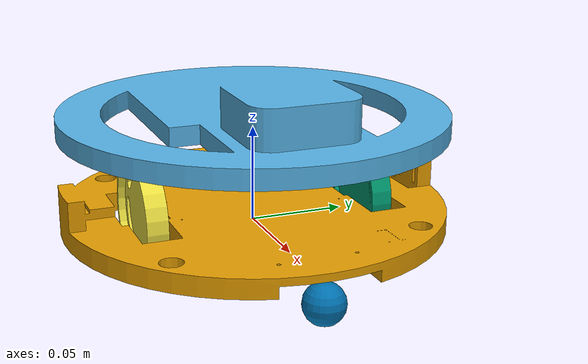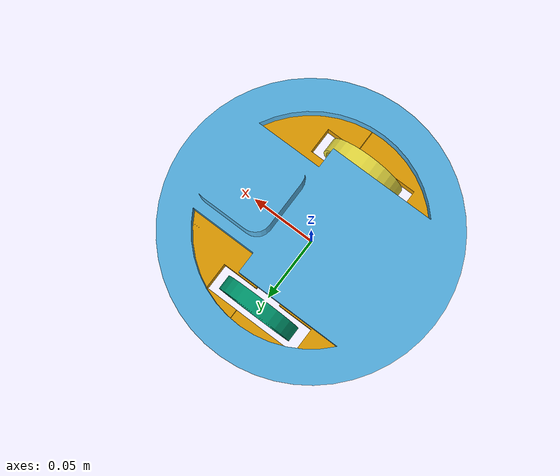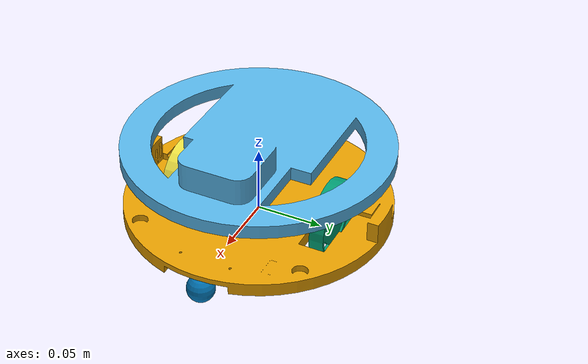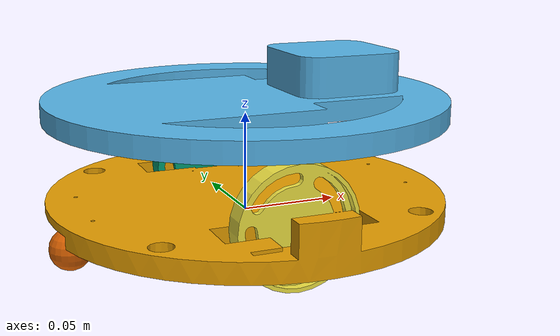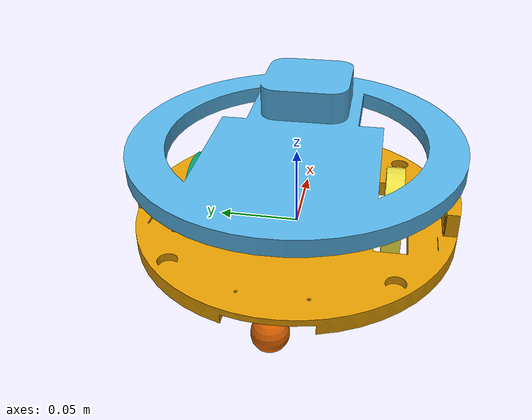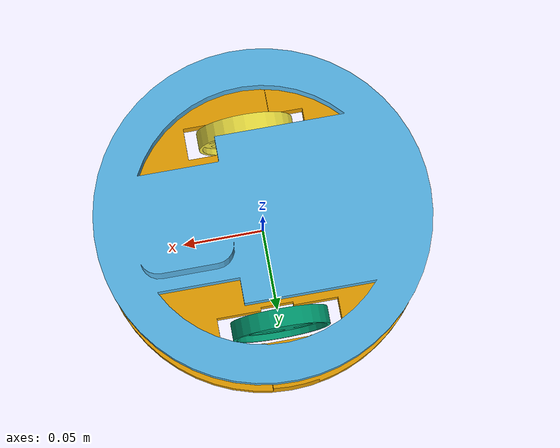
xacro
<?xml version="1.0"?>
<robot name = "aynasiz_robot" xmlns:xacro="http://ros.org/wiki/xacro">
  <xacro:include filename="$(find aynasiz_description)/urdf/sase.xacro"/>
  <xacro:include filename="$(find aynasiz_description)/urdf/inertia.xacro"/>
  <xacro:include filename="$(find aynasiz_description)/urdf/tekerlekler.xacro"/>
  <xacro:include filename="$(find aynasiz_description)/urdf/ust_sase.xacro"/>
  <xacro:include filename="$(find aynasiz_description)/urdf/diferansiyel.xacro"/>

  <xacro:sase />
  <xacro:ust_sase xyz_konum="0 0 0.05" rpy_konum="0 0 0" />
  <xacro:tekerler xyz_konum="0 0.06 0.01" rpy_konum="0 0 0" yon="left"/>
  <xacro:tekerler xyz_konum="0 -0.06 0.01" rpy_konum="0 0 0" yon="right"/>
  <xacro:sarhos_tekerler xyz_konum="0.09 0 -0.00925" rpy_konum="0 0 0" yon="forward_chaster_wheel"/>
  <xacro:sarhos_tekerler xyz_konum="-0.09 0 -0.00925" rpy_konum="0 0 0" yon="backward_chaster_wheel"/>
  <xacro:diferansiyel />

</robot>

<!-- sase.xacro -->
<robot xmlns:xacro="http://ros.org/wiki/xacro">
  <xacro:macro name="sase">
    <link name="base_link">
      <collision>
        <origin xyz="0 0 0" rpy="0 0 0"/>
        <geometry>
          <mesh filename="package://aynasiz_description/dae/sase.dae" />
        </geometry>
      </collision>
      <visual>
        <origin xyz="0 0 0" rpy="0 0 0"/>
        <geometry>
          <mesh filename="package://aynasiz_description/dae/sase.dae" />
        </geometry>
      </visual>

    <xacro:cylinder_inertial radius="0.02" length="0.01" mass="0.2"/>
    </link>
    <gazebo reference="base_link">
      <material value="Gazebo/Blue"/>
    </gazebo>
  </xacro:macro>
</robot>

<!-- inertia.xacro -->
<robot
  xmlns:xacro="http://ros.org/wiki/xacro">
  <property name="M_PI" value="3.1415926535897931" />

  <!-- see https://secure.wikimedia.org/wikipedia/en/wiki/List_of_moment_of_inertia_tensors -->

  <!-- #################### versions without origin #################### -->
  <xacro:macro name="sphere_inertial" params="radius mass">
    <inertial>
      <mass value="${mass}" />
      <origin xyz="0 0 0" />
      <inertia ixx="${0.4 * mass * radius * radius}" ixy="0.0" ixz="0.0"
        iyy="${0.4 * mass * radius * radius}" iyz="0.0"
        izz="${0.4 * mass * radius * radius}" />
    </inertial>
  </xacro:macro>

  <xacro:macro name="cylinder_inertial" params="radius length mass">
    <inertial>
      <mass value="${mass}" />
      <origin xyz="0 0 0" />
      <inertia ixx="${0.0833333 * mass * (3 * radius * radius + length * length)}" ixy="0.0" ixz="0.0"
        iyy="${0.0833333 * mass * (3 * radius * radius + length * length)}" iyz="0.0"
        izz="${0.5 * mass * radius * radius}" />
    </inertial>
  </xacro:macro>

  <xacro:macro name="box_inertial" params="x y z mass">
    <inertial>
      <mass value="${mass}" />
      <origin xyz="0 0 0" />
      <inertia ixx="${0.0833333 * mass * (y*y + z*z)}" ixy="0.0" ixz="0.0"
        iyy="${0.0833333 * mass * (x*x + z*z)}" iyz="0.0"
        izz="${0.0833333 * mass * (x*x + y*y)}" />
    </inertial>
  </xacro:macro>

  <!-- #################### versions with origin #################### -->
  <xacro:macro name="sphere_inertial_with_origin" params="radius mass *origin">
    <inertial>
      <mass value="${mass}" />
      <insert_block name="origin" />
      <inertia ixx="${0.4 * mass * radius * radius}" ixy="0.0" ixz="0.0"
        iyy="${0.4 * mass * radius * radius}" iyz="0.0"
        izz="${0.4 * mass * radius * radius}" />
    </inertial>
  </xacro:macro>

  <xacro:macro name="cylinder_inertial_with_origin" params="radius length mass *origin">
    <inertial>
      <mass value="${mass}" />
      <insert_block name="origin" />
      <inertia ixx="${0.0833333 * mass * (3 * radius * radius + length * length)}" ixy="0.0" ixz="0.0"
        iyy="${0.0833333 * mass * (3 * radius * radius + length * length)}" iyz="0.0"
        izz="${0.5 * mass * radius * radius}" />
    </inertial>
  </xacro:macro>

  <xacro:macro name="box_inertial_with_origin" params="x y z mass *origin">
    <inertial>
      <mass value="${mass}" />
      <insert_block name="origin" />
      <inertia ixx="${0.0833333 * mass * (y*y + z*z)}" ixy="0.0" ixz="0.0"
        iyy="${0.0833333 * mass * (x*x + z*z)}" iyz="0.0"
        izz="${0.0833333 * mass * (x*x + y*y)}" />
    </inertial>
  </xacro:macro>

</robot>

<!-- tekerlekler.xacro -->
<robot xmlns:xacro="http://ros.org/wiki/xacro">
  <xacro:macro name="tekerler" params="xyz_konum rpy_konum yon">
  <link name="wheel_${yon}_link">
    <collision>
       <origin xyz="0 0 0" rpy="0 0 1.57079632679"/>
        <geometry>
          <mesh filename="package://aynasiz_description/dae/teker.dae" />
        </geometry>
    </collision>
    <visual>
       <origin xyz="0 0 0" rpy="0 0 1.57079632679"/>
        <geometry>
          <mesh filename="package://aynasiz_description/dae/teker.dae" />
        </geometry>
    </visual>
    <xacro:cylinder_inertial radius="0.03" length="0.0011" mass="0.04"/>
  </link>

  <joint name="wheel_${yon}_joint" type="continuous">
    <origin xyz="${xyz_konum}" rpy="${rpy_konum}"/>
    <parent link="base_link"/>
    <child link="wheel_${yon}_link"/>
    <axis xyz="0 1 0"/>
  </joint>

  <gazebo reference="wheel_${yon}_link">
    <material value="Gazebo/Black"/>
  </gazebo>

  </xacro:macro>

  <xacro:macro name="sarhos_tekerler" params="xyz_konum rpy_konum yon">
  <link name="caster_wheel_${yon}_link">
    <collision>
       <origin xyz="0 0 0" rpy="0 0 0"/>
       <geometry>
         <sphere radius="0.0105"/>
       </geometry>
    </collision>
    <visual>
       <origin xyz="0 0 0" rpy="0 0 0"/>
       <geometry>
         <sphere radius="0.0105"/>
       </geometry>
    </visual>
    <xacro:sphere_inertial radius="0.0105" mass="0.04"/>
  </link>

  <joint name="caster_wheel_${yon}_joint" type="continuous">
    <origin xyz="${xyz_konum}" rpy="${rpy_konum}"/>
    <parent link="base_link"/>
    <child link="caster_wheel_${yon}_link"/>
    <axis xyz="1 1 1"/>
  </joint>

  <gazebo reference="caster_wheel_${yon}_link">
    <material value="Gazebo/black"/>
  </gazebo>

  </xacro:macro>

</robot>

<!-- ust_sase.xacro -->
<robot xmlns:xacro="http://ros.org/wiki/xacro">
  <xacro:macro name="ust_sase" params="xyz_konum rpy_konum">
    <link name="base_top_link">
      <collision>
        <origin xyz="0 0 0" rpy="0 0 0"/>
        <geometry>
          <mesh filename="package://aynasiz_description/dae/ust_sase.dae" />
        </geometry>
      </collision>
      <visual>
        <origin xyz="0 0 0" rpy="0 0 0"/>
        <geometry>
          <mesh filename="package://aynasiz_description/dae/ust_sase.dae" />
        </geometry>
      </visual>

    <xacro:cylinder_inertial radius="0.02" length="0.01" mass="0.2"/>
    </link>

    <joint name="ust_sase_joint" type="fixed">
        <origin xyz="${xyz_konum}" rpy="${rpy_konum}"/>
        <parent link="base_link"/>
        <child link="base_top_link"/>
        <axis xyz="0 0 0"/>
    </joint>

    <gazebo reference="base_link">
      <material value="Gazebo/Blue"/>
    </gazebo>

  </xacro:macro>
</robot>
